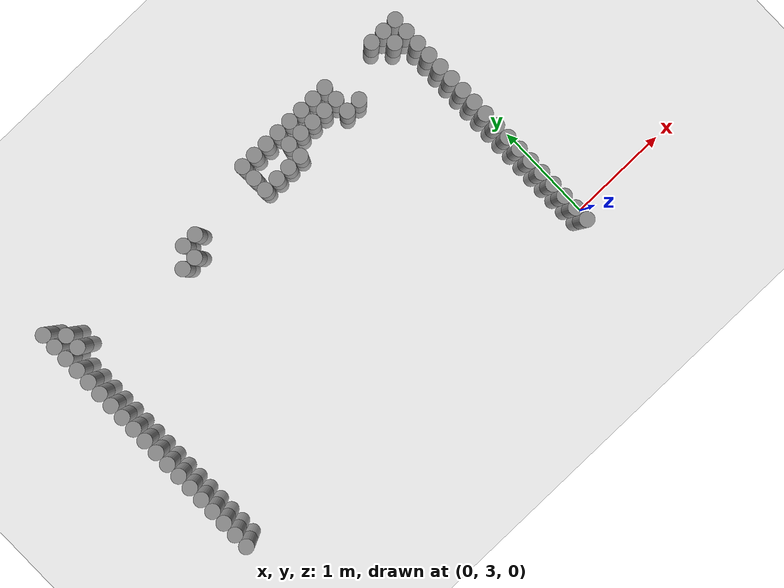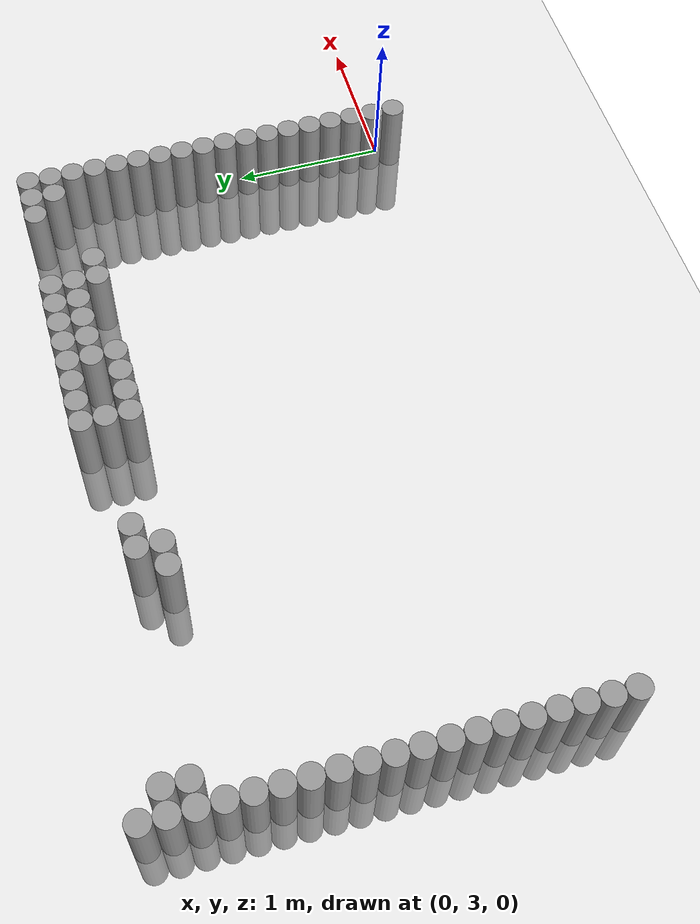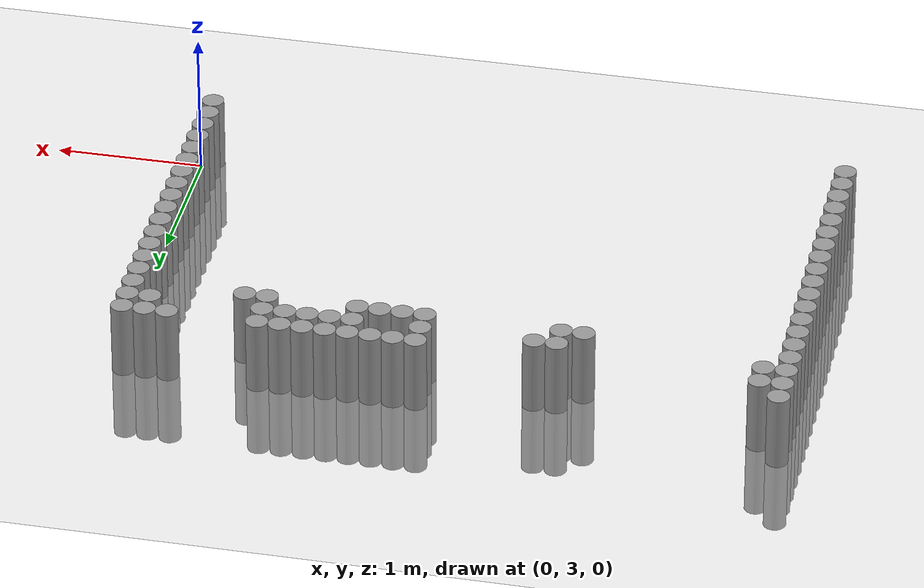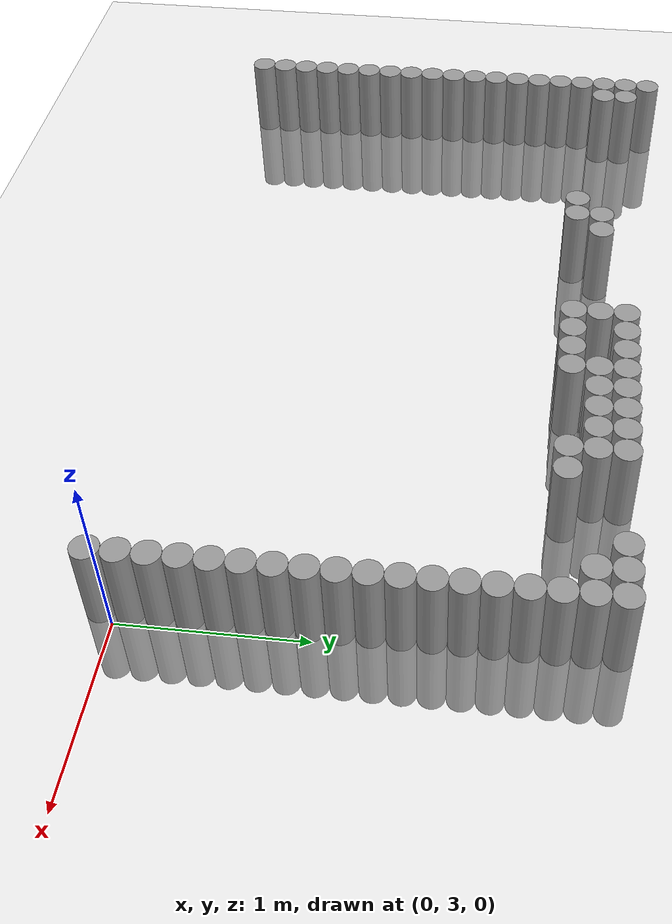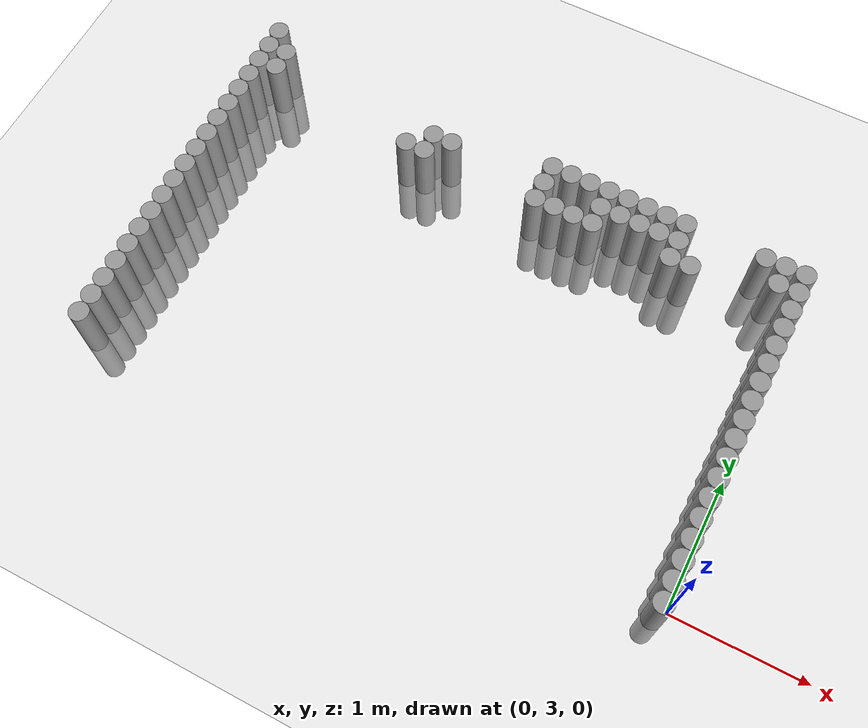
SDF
<sdf version="1.6">
 <world name="default">
  <model name="ground_plane">
   <static>1</static>
   <link name="link">
    <collision name="collision">
     <geometry><plane><normal>0 0 1</normal><size>100 100</size></plane></geometry>
     <surface><friction><ode><mu>100</mu><mu2>50</mu2></ode></friction></surface>
    </collision>
    <visual name="visual">
     <cast_shadows>0</cast_shadows>
     <geometry><plane><normal>0 0 1</normal><size>100 100</size></plane></geometry>
     <material>
      <script><uri>file://media/materials/scripts/gazebo.material</uri><name>Gazebo/Grey</name></script>
     </material>
    </visual>
   </link>
  </model>
  <model name="unit_cylinder_66">
   <pose>-0.075000 2.925000 0.000000 0.000000 0.000000 0.000000</pose>
   <link name="link">
    <inertial>
     <mass>1</mass>
     <inertia><ixx>0.145833</ixx><ixy>0</ixy><ixz>0</ixz><iyy>0.145833</iyy><iyz>0</iyz><izz>0.125</izz></inertia>
    </inertial>
    <collision name="collision">
     <geometry><cylinder><radius>0.075000</radius><length>1</length></cylinder></geometry>
    </collision>
    <visual name="visual">
     <geometry><cylinder><radius>0.075000</radius><length>1</length></cylinder></geometry>
     <material>
      <script><name>Gazebo/Grey</name><uri>file://media/materials/scripts/gazebo.material</uri></script>
     </material>
    </visual>
   </link>
  </model>
  <model name="unit_cylinder_67">
   <pose>-4.425000 2.925000 0.000000 0.000000 0.000000 0.000000</pose>
   <link name="link">
    <inertial>
     <mass>1</mass>
     <inertia><ixx>0.145833</ixx><ixy>0</ixy><ixz>0</ixz><iyy>0.145833</iyy><iyz>0</iyz><izz>0.125</izz></inertia>
    </inertial>
    <collision name="collision">
     <geometry><cylinder><radius>0.075000</radius><length>1</length></cylinder></geometry>
    </collision>
    <visual name="visual">
     <geometry><cylinder><radius>0.075000</radius><length>1</length></cylinder></geometry>
     <material>
      <script><name>Gazebo/Grey</name><uri>file://media/materials/scripts/gazebo.material</uri></script>
     </material>
    </visual>
   </link>
  </model>
  <model name="unit_cylinder_68">
   <pose>-0.075000 3.075000 0.000000 0.000000 0.000000 0.000000</pose>
   <link name="link">
    <inertial>
     <mass>1</mass>
     <inertia><ixx>0.145833</ixx><ixy>0</ixy><ixz>0</ixz><iyy>0.145833</iyy><iyz>0</iyz><izz>0.125</izz></inertia>
    </inertial>
    <collision name="collision">
     <geometry><cylinder><radius>0.075000</radius><length>1</length></cylinder></geometry>
    </collision>
    <visual name="visual">
     <geometry><cylinder><radius>0.075000</radius><length>1</length></cylinder></geometry>
     <material>
      <script><name>Gazebo/Grey</name><uri>file://media/materials/scripts/gazebo.material</uri></script>
     </material>
    </visual>
   </link>
  </model>
  <model name="unit_cylinder_69">
   <pose>-4.425000 3.075000 0.000000 0.000000 0.000000 0.000000</pose>
   <link name="link">
    <inertial>
     <mass>1</mass>
     <inertia><ixx>0.145833</ixx><ixy>0</ixy><ixz>0</ixz><iyy>0.145833</iyy><iyz>0</iyz><izz>0.125</izz></inertia>
    </inertial>
    <collision name="collision">
     <geometry><cylinder><radius>0.075000</radius><length>1</length></cylinder></geometry>
    </collision>
    <visual name="visual">
     <geometry><cylinder><radius>0.075000</radius><length>1</length></cylinder></geometry>
     <material>
      <script><name>Gazebo/Grey</name><uri>file://media/materials/scripts/gazebo.material</uri></script>
     </material>
    </visual>
   </link>
  </model>
  <model name="unit_cylinder_70">
   <pose>-0.075000 3.225000 0.000000 0.000000 0.000000 0.000000</pose>
   <link name="link">
    <inertial>
     <mass>1</mass>
     <inertia><ixx>0.145833</ixx><ixy>0</ixy><ixz>0</ixz><iyy>0.145833</iyy><iyz>0</iyz><izz>0.125</izz></inertia>
    </inertial>
    <collision name="collision">
     <geometry><cylinder><radius>0.075000</radius><length>1</length></cylinder></geometry>
    </collision>
    <visual name="visual">
     <geometry><cylinder><radius>0.075000</radius><length>1</length></cylinder></geometry>
     <material>
      <script><name>Gazebo/Grey</name><uri>file://media/materials/scripts/gazebo.material</uri></script>
     </material>
    </visual>
   </link>
  </model>
  <model name="unit_cylinder_71">
   <pose>-4.425000 3.225000 0.000000 0.000000 0.000000 0.000000</pose>
   <link name="link">
    <inertial>
     <mass>1</mass>
     <inertia><ixx>0.145833</ixx><ixy>0</ixy><ixz>0</ixz><iyy>0.145833</iyy><iyz>0</iyz><izz>0.125</izz></inertia>
    </inertial>
    <collision name="collision">
     <geometry><cylinder><radius>0.075000</radius><length>1</length></cylinder></geometry>
    </collision>
    <visual name="visual">
     <geometry><cylinder><radius>0.075000</radius><length>1</length></cylinder></geometry>
     <material>
      <script><name>Gazebo/Grey</name><uri>file://media/materials/scripts/gazebo.material</uri></script>
     </material>
    </visual>
   </link>
  </model>
  <model name="unit_cylinder_72">
   <pose>-0.075000 3.375000 0.000000 0.000000 0.000000 0.000000</pose>
   <link name="link">
    <inertial>
     <mass>1</mass>
     <inertia><ixx>0.145833</ixx><ixy>0</ixy><ixz>0</ixz><iyy>0.145833</iyy><iyz>0</iyz><izz>0.125</izz></inertia>
    </inertial>
    <collision name="collision">
     <geometry><cylinder><radius>0.075000</radius><length>1</length></cylinder></geometry>
    </collision>
    <visual name="visual">
     <geometry><cylinder><radius>0.075000</radius><length>1</length></cylinder></geometry>
     <material>
      <script><name>Gazebo/Grey</name><uri>file://media/materials/scripts/gazebo.material</uri></script>
     </material>
    </visual>
   </link>
  </model>
  <model name="unit_cylinder_73">
   <pose>-4.425000 3.375000 0.000000 0.000000 0.000000 0.000000</pose>
   <link name="link">
    <inertial>
     <mass>1</mass>
     <inertia><ixx>0.145833</ixx><ixy>0</ixy><ixz>0</ixz><iyy>0.145833</iyy><iyz>0</iyz><izz>0.125</izz></inertia>
    </inertial>
    <collision name="collision">
     <geometry><cylinder><radius>0.075000</radius><length>1</length></cylinder></geometry>
    </collision>
    <visual name="visual">
     <geometry><cylinder><radius>0.075000</radius><length>1</length></cylinder></geometry>
     <material>
      <script><name>Gazebo/Grey</name><uri>file://media/materials/scripts/gazebo.material</uri></script>
     </material>
    </visual>
   </link>
  </model>
  <model name="unit_cylinder_74">
   <pose>-0.075000 3.525000 0.000000 0.000000 0.000000 0.000000</pose>
   <link name="link">
    <inertial>
     <mass>1</mass>
     <inertia><ixx>0.145833</ixx><ixy>0</ixy><ixz>0</ixz><iyy>0.145833</iyy><iyz>0</iyz><izz>0.125</izz></inertia>
    </inertial>
    <collision name="collision">
     <geometry><cylinder><radius>0.075000</radius><length>1</length></cylinder></geometry>
    </collision>
    <visual name="visual">
     <geometry><cylinder><radius>0.075000</radius><length>1</length></cylinder></geometry>
     <material>
      <script><name>Gazebo/Grey</name><uri>file://media/materials/scripts/gazebo.material</uri></script>
     </material>
    </visual>
   </link>
  </model>
  <model name="unit_cylinder_75">
   <pose>-4.425000 3.525000 0.000000 0.000000 0.000000 0.000000</pose>
   <link name="link">
    <inertial>
     <mass>1</mass>
     <inertia><ixx>0.145833</ixx><ixy>0</ixy><ixz>0</ixz><iyy>0.145833</iyy><iyz>0</iyz><izz>0.125</izz></inertia>
    </inertial>
    <collision name="collision">
     <geometry><cylinder><radius>0.075000</radius><length>1</length></cylinder></geometry>
    </collision>
    <visual name="visual">
     <geometry><cylinder><radius>0.075000</radius><length>1</length></cylinder></geometry>
     <material>
      <script><name>Gazebo/Grey</name><uri>file://media/materials/scripts/gazebo.material</uri></script>
     </material>
    </visual>
   </link>
  </model>
  <model name="unit_cylinder_76">
   <pose>-0.075000 3.675000 0.000000 0.000000 0.000000 0.000000</pose>
   <link name="link">
    <inertial>
     <mass>1</mass>
     <inertia><ixx>0.145833</ixx><ixy>0</ixy><ixz>0</ixz><iyy>0.145833</iyy><iyz>0</iyz><izz>0.125</izz></inertia>
    </inertial>
    <collision name="collision">
     <geometry><cylinder><radius>0.075000</radius><length>1</length></cylinder></geometry>
    </collision>
    <visual name="visual">
     <geometry><cylinder><radius>0.075000</radius><length>1</length></cylinder></geometry>
     <material>
      <script><name>Gazebo/Grey</name><uri>file://media/materials/scripts/gazebo.material</uri></script>
     </material>
    </visual>
   </link>
  </model>
  <model name="unit_cylinder_77">
   <pose>-4.425000 3.675000 0.000000 0.000000 0.000000 0.000000</pose>
   <link name="link">
    <inertial>
     <mass>1</mass>
     <inertia><ixx>0.145833</ixx><ixy>0</ixy><ixz>0</ixz><iyy>0.145833</iyy><iyz>0</iyz><izz>0.125</izz></inertia>
    </inertial>
    <collision name="collision">
     <geometry><cylinder><radius>0.075000</radius><length>1</length></cylinder></geometry>
    </collision>
    <visual name="visual">
     <geometry><cylinder><radius>0.075000</radius><length>1</length></cylinder></geometry>
     <material>
      <script><name>Gazebo/Grey</name><uri>file://media/materials/scripts/gazebo.material</uri></script>
     </material>
    </visual>
   </link>
  </model>
  <model name="unit_cylinder_78">
   <pose>-0.075000 3.825000 0.000000 0.000000 0.000000 0.000000</pose>
   <link name="link">
    <inertial>
     <mass>1</mass>
     <inertia><ixx>0.145833</ixx><ixy>0</ixy><ixz>0</ixz><iyy>0.145833</iyy><iyz>0</iyz><izz>0.125</izz></inertia>
    </inertial>
    <collision name="collision">
     <geometry><cylinder><radius>0.075000</radius><length>1</length></cylinder></geometry>
    </collision>
    <visual name="visual">
     <geometry><cylinder><radius>0.075000</radius><length>1</length></cylinder></geometry>
     <material>
      <script><name>Gazebo/Grey</name><uri>file://media/materials/scripts/gazebo.material</uri></script>
     </material>
    </visual>
   </link>
  </model>
  <model name="unit_cylinder_79">
   <pose>-4.425000 3.825000 0.000000 0.000000 0.000000 0.000000</pose>
   <link name="link">
    <inertial>
     <mass>1</mass>
     <inertia><ixx>0.145833</ixx><ixy>0</ixy><ixz>0</ixz><iyy>0.145833</iyy><iyz>0</iyz><izz>0.125</izz></inertia>
    </inertial>
    <collision name="collision">
     <geometry><cylinder><radius>0.075000</radius><length>1</length></cylinder></geometry>
    </collision>
    <visual name="visual">
     <geometry><cylinder><radius>0.075000</radius><length>1</length></cylinder></geometry>
     <material>
      <script><name>Gazebo/Grey</name><uri>file://media/materials/scripts/gazebo.material</uri></script>
     </material>
    </visual>
   </link>
  </model>
  <model name="unit_cylinder_80">
   <pose>-0.075000 3.975000 0.000000 0.000000 0.000000 0.000000</pose>
   <link name="link">
    <inertial>
     <mass>1</mass>
     <inertia><ixx>0.145833</ixx><ixy>0</ixy><ixz>0</ixz><iyy>0.145833</iyy><iyz>0</iyz><izz>0.125</izz></inertia>
    </inertial>
    <collision name="collision">
     <geometry><cylinder><radius>0.075000</radius><length>1</length></cylinder></geometry>
    </collision>
    <visual name="visual">
     <geometry><cylinder><radius>0.075000</radius><length>1</length></cylinder></geometry>
     <material>
      <script><name>Gazebo/Grey</name><uri>file://media/materials/scripts/gazebo.material</uri></script>
     </material>
    </visual>
   </link>
  </model>
  <model name="unit_cylinder_81">
   <pose>-4.425000 3.975000 0.000000 0.000000 0.000000 0.000000</pose>
   <link name="link">
    <inertial>
     <mass>1</mass>
     <inertia><ixx>0.145833</ixx><ixy>0</ixy><ixz>0</ixz><iyy>0.145833</iyy><iyz>0</iyz><izz>0.125</izz></inertia>
    </inertial>
    <collision name="collision">
     <geometry><cylinder><radius>0.075000</radius><length>1</length></cylinder></geometry>
    </collision>
    <visual name="visual">
     <geometry><cylinder><radius>0.075000</radius><length>1</length></cylinder></geometry>
     <material>
      <script><name>Gazebo/Grey</name><uri>file://media/materials/scripts/gazebo.material</uri></script>
     </material>
    </visual>
   </link>
  </model>
  <model name="unit_cylinder_82">
   <pose>-0.075000 4.125000 0.000000 0.000000 0.000000 0.000000</pose>
   <link name="link">
    <inertial>
     <mass>1</mass>
     <inertia><ixx>0.145833</ixx><ixy>0</ixy><ixz>0</ixz><iyy>0.145833</iyy><iyz>0</iyz><izz>0.125</izz></inertia>
    </inertial>
    <collision name="collision">
     <geometry><cylinder><radius>0.075000</radius><length>1</length></cylinder></geometry>
    </collision>
    <visual name="visual">
     <geometry><cylinder><radius>0.075000</radius><length>1</length></cylinder></geometry>
     <material>
      <script><name>Gazebo/Grey</name><uri>file://media/materials/scripts/gazebo.material</uri></script>
     </material>
    </visual>
   </link>
  </model>
  <model name="unit_cylinder_83">
   <pose>-4.425000 4.125000 0.000000 0.000000 0.000000 0.000000</pose>
   <link name="link">
    <inertial>
     <mass>1</mass>
     <inertia><ixx>0.145833</ixx><ixy>0</ixy><ixz>0</ixz><iyy>0.145833</iyy><iyz>0</iyz><izz>0.125</izz></inertia>
    </inertial>
    <collision name="collision">
     <geometry><cylinder><radius>0.075000</radius><length>1</length></cylinder></geometry>
    </collision>
    <visual name="visual">
     <geometry><cylinder><radius>0.075000</radius><length>1</length></cylinder></geometry>
     <material>
      <script><name>Gazebo/Grey</name><uri>file://media/materials/scripts/gazebo.material</uri></script>
     </material>
    </visual>
   </link>
  </model>
  <model name="unit_cylinder_84">
   <pose>-0.075000 4.275000 0.000000 0.000000 0.000000 0.000000</pose>
   <link name="link">
    <inertial>
     <mass>1</mass>
     <inertia><ixx>0.145833</ixx><ixy>0</ixy><ixz>0</ixz><iyy>0.145833</iyy><iyz>0</iyz><izz>0.125</izz></inertia>
    </inertial>
    <collision name="collision">
     <geometry><cylinder><radius>0.075000</radius><length>1</length></cylinder></geometry>
    </collision>
    <visual name="visual">
     <geometry><cylinder><radius>0.075000</radius><length>1</length></cylinder></geometry>
     <material>
      <script><name>Gazebo/Grey</name><uri>file://media/materials/scripts/gazebo.material</uri></script>
     </material>
    </visual>
   </link>
  </model>
  <model name="unit_cylinder_85">
   <pose>-4.425000 4.275000 0.000000 0.000000 0.000000 0.000000</pose>
   <link name="link">
    <inertial>
     <mass>1</mass>
     <inertia><ixx>0.145833</ixx><ixy>0</ixy><ixz>0</ixz><iyy>0.145833</iyy><iyz>0</iyz><izz>0.125</izz></inertia>
    </inertial>
    <collision name="collision">
     <geometry><cylinder><radius>0.075000</radius><length>1</length></cylinder></geometry>
    </collision>
    <visual name="visual">
     <geometry><cylinder><radius>0.075000</radius><length>1</length></cylinder></geometry>
     <material>
      <script><name>Gazebo/Grey</name><uri>file://media/materials/scripts/gazebo.material</uri></script>
     </material>
    </visual>
   </link>
  </model>
  <model name="unit_cylinder_86">
   <pose>-0.075000 4.425000 0.000000 0.000000 0.000000 0.000000</pose>
   <link name="link">
    <inertial>
     <mass>1</mass>
     <inertia><ixx>0.145833</ixx><ixy>0</ixy><ixz>0</ixz><iyy>0.145833</iyy><iyz>0</iyz><izz>0.125</izz></inertia>
    </inertial>
    <collision name="collision">
     <geometry><cylinder><radius>0.075000</radius><length>1</length></cylinder></geometry>
    </collision>
    <visual name="visual">
     <geometry><cylinder><radius>0.075000</radius><length>1</length></cylinder></geometry>
     <material>
      <script><name>Gazebo/Grey</name><uri>file://media/materials/scripts/gazebo.material</uri></script>
     </material>
    </visual>
   </link>
  </model>
  <model name="unit_cylinder_87">
   <pose>-4.425000 4.425000 0.000000 0.000000 0.000000 0.000000</pose>
   <link name="link">
    <inertial>
     <mass>1</mass>
     <inertia><ixx>0.145833</ixx><ixy>0</ixy><ixz>0</ixz><iyy>0.145833</iyy><iyz>0</iyz><izz>0.125</izz></inertia>
    </inertial>
    <collision name="collision">
     <geometry><cylinder><radius>0.075000</radius><length>1</length></cylinder></geometry>
    </collision>
    <visual name="visual">
     <geometry><cylinder><radius>0.075000</radius><length>1</length></cylinder></geometry>
     <material>
      <script><name>Gazebo/Grey</name><uri>file://media/materials/scripts/gazebo.material</uri></script>
     </material>
    </visual>
   </link>
  </model>
  <model name="unit_cylinder_88">
   <pose>-0.075000 4.575000 0.000000 0.000000 0.000000 0.000000</pose>
   <link name="link">
    <inertial>
     <mass>1</mass>
     <inertia><ixx>0.145833</ixx><ixy>0</ixy><ixz>0</ixz><iyy>0.145833</iyy><iyz>0</iyz><izz>0.125</izz></inertia>
    </inertial>
    <collision name="collision">
     <geometry><cylinder><radius>0.075000</radius><length>1</length></cylinder></geometry>
    </collision>
    <visual name="visual">
     <geometry><cylinder><radius>0.075000</radius><length>1</length></cylinder></geometry>
     <material>
      <script><name>Gazebo/Grey</name><uri>file://media/materials/scripts/gazebo.material</uri></script>
     </material>
    </visual>
   </link>
  </model>
  <model name="unit_cylinder_89">
   <pose>-4.425000 4.575000 0.000000 0.000000 0.000000 0.000000</pose>
   <link name="link">
    <inertial>
     <mass>1</mass>
     <inertia><ixx>0.145833</ixx><ixy>0</ixy><ixz>0</ixz><iyy>0.145833</iyy><iyz>0</iyz><izz>0.125</izz></inertia>
    </inertial>
    <collision name="collision">
     <geometry><cylinder><radius>0.075000</radius><length>1</length></cylinder></geometry>
    </collision>
    <visual name="visual">
     <geometry><cylinder><radius>0.075000</radius><length>1</length></cylinder></geometry>
     <material>
      <script><name>Gazebo/Grey</name><uri>file://media/materials/scripts/gazebo.material</uri></script>
     </material>
    </visual>
   </link>
  </model>
  <model name="unit_cylinder_90">
   <pose>-0.075000 4.725000 0.000000 0.000000 0.000000 0.000000</pose>
   <link name="link">
    <inertial>
     <mass>1</mass>
     <inertia><ixx>0.145833</ixx><ixy>0</ixy><ixz>0</ixz><iyy>0.145833</iyy><iyz>0</iyz><izz>0.125</izz></inertia>
    </inertial>
    <collision name="collision">
     <geometry><cylinder><radius>0.075000</radius><length>1</length></cylinder></geometry>
    </collision>
    <visual name="visual">
     <geometry><cylinder><radius>0.075000</radius><length>1</length></cylinder></geometry>
     <material>
      <script><name>Gazebo/Grey</name><uri>file://media/materials/scripts/gazebo.material</uri></script>
     </material>
    </visual>
   </link>
  </model>
  <model name="unit_cylinder_91">
   <pose>-4.425000 4.725000 0.000000 0.000000 0.000000 0.000000</pose>
   <link name="link">
    <inertial>
     <mass>1</mass>
     <inertia><ixx>0.145833</ixx><ixy>0</ixy><ixz>0</ixz><iyy>0.145833</iyy><iyz>0</iyz><izz>0.125</izz></inertia>
    </inertial>
    <collision name="collision">
     <geometry><cylinder><radius>0.075000</radius><length>1</length></cylinder></geometry>
    </collision>
    <visual name="visual">
     <geometry><cylinder><radius>0.075000</radius><length>1</length></cylinder></geometry>
     <material>
      <script><name>Gazebo/Grey</name><uri>file://media/materials/scripts/gazebo.material</uri></script>
     </material>
    </visual>
   </link>
  </model>
  <model name="unit_cylinder_92">
   <pose>-0.075000 4.875000 0.000000 0.000000 0.000000 0.000000</pose>
   <link name="link">
    <inertial>
     <mass>1</mass>
     <inertia><ixx>0.145833</ixx><ixy>0</ixy><ixz>0</ixz><iyy>0.145833</iyy><iyz>0</iyz><izz>0.125</izz></inertia>
    </inertial>
    <collision name="collision">
     <geometry><cylinder><radius>0.075000</radius><length>1</length></cylinder></geometry>
    </collision>
    <visual name="visual">
     <geometry><cylinder><radius>0.075000</radius><length>1</length></cylinder></geometry>
     <material>
      <script><name>Gazebo/Grey</name><uri>file://media/materials/scripts/gazebo.material</uri></script>
     </material>
    </visual>
   </link>
  </model>
  <model name="unit_cylinder_93">
   <pose>-4.425000 4.875000 0.000000 0.000000 0.000000 0.000000</pose>
   <link name="link">
    <inertial>
     <mass>1</mass>
     <inertia><ixx>0.145833</ixx><ixy>0</ixy><ixz>0</ixz><iyy>0.145833</iyy><iyz>0</iyz><izz>0.125</izz></inertia>
    </inertial>
    <collision name="collision">
     <geometry><cylinder><radius>0.075000</radius><length>1</length></cylinder></geometry>
    </collision>
    <visual name="visual">
     <geometry><cylinder><radius>0.075000</radius><length>1</length></cylinder></geometry>
     <material>
      <script><name>Gazebo/Grey</name><uri>file://media/materials/scripts/gazebo.material</uri></script>
     </material>
    </visual>
   </link>
  </model>
  <model name="unit_cylinder_94">
   <pose>-0.075000 5.025000 0.000000 0.000000 0.000000 0.000000</pose>
   <link name="link">
    <inertial>
     <mass>1</mass>
     <inertia><ixx>0.145833</ixx><ixy>0</ixy><ixz>0</ixz><iyy>0.145833</iyy><iyz>0</iyz><izz>0.125</izz></inertia>
    </inertial>
    <collision name="collision">
     <geometry><cylinder><radius>0.075000</radius><length>1</length></cylinder></geometry>
    </collision>
    <visual name="visual">
     <geometry><cylinder><radius>0.075000</radius><length>1</length></cylinder></geometry>
     <material>
      <script><name>Gazebo/Grey</name><uri>file://media/materials/scripts/gazebo.material</uri></script>
     </material>
    </visual>
   </link>
  </model>
  <model name="unit_cylinder_95">
   <pose>-4.425000 5.025000 0.000000 0.000000 0.000000 0.000000</pose>
   <link name="link">
    <inertial>
     <mass>1</mass>
     <inertia><ixx>0.145833</ixx><ixy>0</ixy><ixz>0</ixz><iyy>0.145833</iyy><iyz>0</iyz><izz>0.125</izz></inertia>
    </inertial>
    <collision name="collision">
     <geometry><cylinder><radius>0.075000</radius><length>1</length></cylinder></geometry>
    </collision>
    <visual name="visual">
     <geometry><cylinder><radius>0.075000</radius><length>1</length></cylinder></geometry>
     <material>
      <script><name>Gazebo/Grey</name><uri>file://media/materials/scripts/gazebo.material</uri></script>
     </material>
    </visual>
   </link>
  </model>
  <model name="unit_cylinder_96">
   <pose>-4.425000 5.175000 0.000000 0.000000 0.000000 0.000000</pose>
   <link name="link">
    <inertial>
     <mass>1</mass>
     <inertia><ixx>0.145833</ixx><ixy>0</ixy><ixz>0</ixz><iyy>0.145833</iyy><iyz>0</iyz><izz>0.125</izz></inertia>
    </inertial>
    <collision name="collision">
     <geometry><cylinder><radius>0.075000</radius><length>1</length></cylinder></geometry>
    </collision>
    <visual name="visual">
     <geometry><cylinder><radius>0.075000</radius><length>1</length></cylinder></geometry>
     <material>
      <script><name>Gazebo/Grey</name><uri>file://media/materials/scripts/gazebo.material</uri></script>
     </material>
    </visual>
   </link>
  </model>
  <model name="unit_cylinder_97">
   <pose>-4.425000 5.325000 0.000000 0.000000 0.000000 0.000000</pose>
   <link name="link">
    <inertial>
     <mass>1</mass>
     <inertia><ixx>0.145833</ixx><ixy>0</ixy><ixz>0</ixz><iyy>0.145833</iyy><iyz>0</iyz><izz>0.125</izz></inertia>
    </inertial>
    <collision name="collision">
     <geometry><cylinder><radius>0.075000</radius><length>1</length></cylinder></geometry>
    </collision>
    <visual name="visual">
     <geometry><cylinder><radius>0.075000</radius><length>1</length></cylinder></geometry>
     <material>
      <script><name>Gazebo/Grey</name><uri>file://media/materials/scripts/gazebo.material</uri></script>
     </material>
    </visual>
   </link>
  </model>
  <model name="unit_cylinder_98">
   <pose>-4.425000 5.475000 0.000000 0.000000 0.000000 0.000000</pose>
   <link name="link">
    <inertial>
     <mass>1</mass>
     <inertia><ixx>0.145833</ixx><ixy>0</ixy><ixz>0</ixz><iyy>0.145833</iyy><iyz>0</iyz><izz>0.125</izz></inertia>
    </inertial>
    <collision name="collision">
     <geometry><cylinder><radius>0.075000</radius><length>1</length></cylinder></geometry>
    </collision>
    <visual name="visual">
     <geometry><cylinder><radius>0.075000</radius><length>1</length></cylinder></geometry>
     <material>
      <script><name>Gazebo/Grey</name><uri>file://media/materials/scripts/gazebo.material</uri></script>
     </material>
    </visual>
   </link>
  </model>
  <model name="unit_cylinder_99">
   <pose>-4.425000 5.625000 0.000000 0.000000 0.000000 0.000000</pose>
   <link name="link">
    <inertial>
     <mass>1</mass>
     <inertia><ixx>0.145833</ixx><ixy>0</ixy><ixz>0</ixz><iyy>0.145833</iyy><iyz>0</iyz><izz>0.125</izz></inertia>
    </inertial>
    <collision name="collision">
     <geometry><cylinder><radius>0.075000</radius><length>1</length></cylinder></geometry>
    </collision>
    <visual name="visual">
     <geometry><cylinder><radius>0.075000</radius><length>1</length></cylinder></geometry>
     <material>
      <script><name>Gazebo/Grey</name><uri>file://media/materials/scripts/gazebo.material</uri></script>
     </material>
    </visual>
   </link>
  </model>
  <model name="unit_cylinder_126">
   <pose>-4.275000 5.325000 0.000000 0.000000 0.000000 0.000000</pose>
   <link name="link">
    <inertial>
     <mass>1</mass>
     <inertia><ixx>0.145833</ixx><ixy>0</ixy><ixz>0</ixz><iyy>0.145833</iyy><iyz>0</iyz><izz>0.125</izz></inertia>
    </inertial>
    <collision name="collision">
     <geometry><cylinder><radius>0.075000</radius><length>1</length></cylinder></geometry>
    </collision>
    <visual name="visual">
     <geometry><cylinder><radius>0.075000</radius><length>1</length></cylinder></geometry>
     <material>
      <script><name>Gazebo/Grey</name><uri>file://media/materials/scripts/gazebo.material</uri></script>
     </material>
    </visual>
   </link>
  </model>
  <model name="unit_cylinder_127">
   <pose>-4.275000 5.475000 0.000000 0.000000 0.000000 0.000000</pose>
   <link name="link">
    <inertial>
     <mass>1</mass>
     <inertia><ixx>0.145833</ixx><ixy>0</ixy><ixz>0</ixz><iyy>0.145833</iyy><iyz>0</iyz><izz>0.125</izz></inertia>
    </inertial>
    <collision name="collision">
     <geometry><cylinder><radius>0.075000</radius><length>1</length></cylinder></geometry>
    </collision>
    <visual name="visual">
     <geometry><cylinder><radius>0.075000</radius><length>1</length></cylinder></geometry>
     <material>
      <script><name>Gazebo/Grey</name><uri>file://media/materials/scripts/gazebo.material</uri></script>
     </material>
    </visual>
   </link>
  </model>
  <model name="unit_cylinder_166">
   <pose>-3.075000 5.175000 0.000000 0.000000 0.000000 0.000000</pose>
   <link name="link">
    <inertial>
     <mass>1</mass>
     <inertia><ixx>0.145833</ixx><ixy>0</ixy><ixz>0</ixz><iyy>0.145833</iyy><iyz>0</iyz><izz>0.125</izz></inertia>
    </inertial>
    <collision name="collision">
     <geometry><cylinder><radius>0.075000</radius><length>1</length></cylinder></geometry>
    </collision>
    <visual name="visual">
     <geometry><cylinder><radius>0.075000</radius><length>1</length></cylinder></geometry>
     <material>
      <script><name>Gazebo/Grey</name><uri>file://media/materials/scripts/gazebo.material</uri></script>
     </material>
    </visual>
   </link>
  </model>
  <model name="unit_cylinder_167">
   <pose>-2.925000 5.175000 0.000000 0.000000 0.000000 0.000000</pose>
   <link name="link">
    <inertial>
     <mass>1</mass>
     <inertia><ixx>0.145833</ixx><ixy>0</ixy><ixz>0</ixz><iyy>0.145833</iyy><iyz>0</iyz><izz>0.125</izz></inertia>
    </inertial>
    <collision name="collision">
     <geometry><cylinder><radius>0.075000</radius><length>1</length></cylinder></geometry>
    </collision>
    <visual name="visual">
     <geometry><cylinder><radius>0.075000</radius><length>1</length></cylinder></geometry>
     <material>
      <script><name>Gazebo/Grey</name><uri>file://media/materials/scripts/gazebo.material</uri></script>
     </material>
    </visual>
   </link>
  </model>
  <model name="unit_cylinder_168">
   <pose>-2.925000 5.325000 0.000000 0.000000 0.000000 0.000000</pose>
   <link name="link">
    <inertial>
     <mass>1</mass>
     <inertia><ixx>0.145833</ixx><ixy>0</ixy><ixz>0</ixz><iyy>0.145833</iyy><iyz>0</iyz><izz>0.125</izz></inertia>
    </inertial>
    <collision name="collision">
     <geometry><cylinder><radius>0.075000</radius><length>1</length></cylinder></geometry>
    </collision>
    <visual name="visual">
     <geometry><cylinder><radius>0.075000</radius><length>1</length></cylinder></geometry>
     <material>
      <script><name>Gazebo/Grey</name><uri>file://media/materials/scripts/gazebo.material</uri></script>
     </material>
    </visual>
   </link>
  </model>
  <model name="unit_cylinder_170">
   <pose>-2.775000 5.325000 0.000000 0.000000 0.000000 0.000000</pose>
   <link name="link">
    <inertial>
     <mass>1</mass>
     <inertia><ixx>0.145833</ixx><ixy>0</ixy><ixz>0</ixz><iyy>0.145833</iyy><iyz>0</iyz><izz>0.125</izz></inertia>
    </inertial>
    <collision name="collision">
     <geometry><cylinder><radius>0.075000</radius><length>1</length></cylinder></geometry>
    </collision>
    <visual name="visual">
     <geometry><cylinder><radius>0.075000</radius><length>1</length></cylinder></geometry>
     <material>
      <script><name>Gazebo/Grey</name><uri>file://media/materials/scripts/gazebo.material</uri></script>
     </material>
    </visual>
   </link>
  </model>
  <model name="unit_cylinder_183">
   <pose>-2.025000 5.175000 0.000000 0.000000 0.000000 0.000000</pose>
   <link name="link">
    <inertial>
     <mass>1</mass>
     <inertia><ixx>0.145833</ixx><ixy>0</ixy><ixz>0</ixz><iyy>0.145833</iyy><iyz>0</iyz><izz>0.125</izz></inertia>
    </inertial>
    <collision name="collision">
     <geometry><cylinder><radius>0.075000</radius><length>1</length></cylinder></geometry>
    </collision>
    <visual name="visual">
     <geometry><cylinder><radius>0.075000</radius><length>1</length></cylinder></geometry>
     <material>
      <script><name>Gazebo/Grey</name><uri>file://media/materials/scripts/gazebo.material</uri></script>
     </material>
    </visual>
   </link>
  </model>
  <model name="unit_cylinder_184">
   <pose>-2.025000 5.325000 0.000000 0.000000 0.000000 0.000000</pose>
   <link name="link">
    <inertial>
     <mass>1</mass>
     <inertia><ixx>0.145833</ixx><ixy>0</ixy><ixz>0</ixz><iyy>0.145833</iyy><iyz>0</iyz><izz>0.125</izz></inertia>
    </inertial>
    <collision name="collision">
     <geometry><cylinder><radius>0.075000</radius><length>1</length></cylinder></geometry>
    </collision>
    <visual name="visual">
     <geometry><cylinder><radius>0.075000</radius><length>1</length></cylinder></geometry>
     <material>
      <script><name>Gazebo/Grey</name><uri>file://media/materials/scripts/gazebo.material</uri></script>
     </material>
    </visual>
   </link>
  </model>
  <model name="unit_cylinder_185">
   <pose>-2.025000 5.475000 0.000000 0.000000 0.000000 0.000000</pose>
   <link name="link">
    <inertial>
     <mass>1</mass>
     <inertia><ixx>0.145833</ixx><ixy>0</ixy><ixz>0</ixz><iyy>0.145833</iyy><iyz>0</iyz><izz>0.125</izz></inertia>
    </inertial>
    <collision name="collision">
     <geometry><cylinder><radius>0.075000</radius><length>1</length></cylinder></geometry>
    </collision>
    <visual name="visual">
     <geometry><cylinder><radius>0.075000</radius><length>1</length></cylinder></geometry>
     <material>
      <script><name>Gazebo/Grey</name><uri>file://media/materials/scripts/gazebo.material</uri></script>
     </material>
    </visual>
   </link>
  </model>
  <model name="unit_cylinder_186">
   <pose>-1.875000 5.175000 0.000000 0.000000 0.000000 0.000000</pose>
   <link name="link">
    <inertial>
     <mass>1</mass>
     <inertia><ixx>0.145833</ixx><ixy>0</ixy><ixz>0</ixz><iyy>0.145833</iyy><iyz>0</iyz><izz>0.125</izz></inertia>
    </inertial>
    <collision name="collision">
     <geometry><cylinder><radius>0.075000</radius><length>1</length></cylinder></geometry>
    </collision>
    <visual name="visual">
     <geometry><cylinder><radius>0.075000</radius><length>1</length></cylinder></geometry>
     <material>
      <script><name>Gazebo/Grey</name><uri>file://media/materials/scripts/gazebo.material</uri></script>
     </material>
    </visual>
   </link>
  </model>
  <model name="unit_cylinder_187">
   <pose>-1.875000 5.475000 0.000000 0.000000 0.000000 0.000000</pose>
   <link name="link">
    <inertial>
     <mass>1</mass>
     <inertia><ixx>0.145833</ixx><ixy>0</ixy><ixz>0</ixz><iyy>0.145833</iyy><iyz>0</iyz><izz>0.125</izz></inertia>
    </inertial>
    <collision name="collision">
     <geometry><cylinder><radius>0.075000</radius><length>1</length></cylinder></geometry>
    </collision>
    <visual name="visual">
     <geometry><cylinder><radius>0.075000</radius><length>1</length></cylinder></geometry>
     <material>
      <script><name>Gazebo/Grey</name><uri>file://media/materials/scripts/gazebo.material</uri></script>
     </material>
    </visual>
   </link>
  </model>
  <model name="unit_cylinder_193">
   <pose>-1.725000 5.175000 0.000000 0.000000 0.000000 0.000000</pose>
   <link name="link">
    <inertial>
     <mass>1</mass>
     <inertia><ixx>0.145833</ixx><ixy>0</ixy><ixz>0</ixz><iyy>0.145833</iyy><iyz>0</iyz><izz>0.125</izz></inertia>
    </inertial>
    <collision name="collision">
     <geometry><cylinder><radius>0.075000</radius><length>1</length></cylinder></geometry>
    </collision>
    <visual name="visual">
     <geometry><cylinder><radius>0.075000</radius><length>1</length></cylinder></geometry>
     <material>
      <script><name>Gazebo/Grey</name><uri>file://media/materials/scripts/gazebo.material</uri></script>
     </material>
    </visual>
   </link>
  </model>
  <model name="unit_cylinder_194">
   <pose>-1.725000 5.475000 0.000000 0.000000 0.000000 0.000000</pose>
   <link name="link">
    <inertial>
     <mass>1</mass>
     <inertia><ixx>0.145833</ixx><ixy>0</ixy><ixz>0</ixz><iyy>0.145833</iyy><iyz>0</iyz><izz>0.125</izz></inertia>
    </inertial>
    <collision name="collision">
     <geometry><cylinder><radius>0.075000</radius><length>1</length></cylinder></geometry>
    </collision>
    <visual name="visual">
     <geometry><cylinder><radius>0.075000</radius><length>1</length></cylinder></geometry>
     <material>
      <script><name>Gazebo/Grey</name><uri>file://media/materials/scripts/gazebo.material</uri></script>
     </material>
    </visual>
   </link>
  </model>
  <model name="unit_cylinder_202">
   <pose>-1.575000 5.175000 0.000000 0.000000 0.000000 0.000000</pose>
   <link name="link">
    <inertial>
     <mass>1</mass>
     <inertia><ixx>0.145833</ixx><ixy>0</ixy><ixz>0</ixz><iyy>0.145833</iyy><iyz>0</iyz><izz>0.125</izz></inertia>
    </inertial>
    <collision name="collision">
     <geometry><cylinder><radius>0.075000</radius><length>1</length></cylinder></geometry>
    </collision>
    <visual name="visual">
     <geometry><cylinder><radius>0.075000</radius><length>1</length></cylinder></geometry>
     <material>
      <script><name>Gazebo/Grey</name><uri>file://media/materials/scripts/gazebo.material</uri></script>
     </material>
    </visual>
   </link>
  </model>
  <model name="unit_cylinder_203">
   <pose>-1.575000 5.325000 0.000000 0.000000 0.000000 0.000000</pose>
   <link name="link">
    <inertial>
     <mass>1</mass>
     <inertia><ixx>0.145833</ixx><ixy>0</ixy><ixz>0</ixz><iyy>0.145833</iyy><iyz>0</iyz><izz>0.125</izz></inertia>
    </inertial>
    <collision name="collision">
     <geometry><cylinder><radius>0.075000</radius><length>1</length></cylinder></geometry>
    </collision>
    <visual name="visual">
     <geometry><cylinder><radius>0.075000</radius><length>1</length></cylinder></geometry>
     <material>
      <script><name>Gazebo/Grey</name><uri>file://media/materials/scripts/gazebo.material</uri></script>
     </material>
    </visual>
   </link>
  </model>
  <model name="unit_cylinder_204">
   <pose>-1.575000 5.475000 0.000000 0.000000 0.000000 0.000000</pose>
   <link name="link">
    <inertial>
     <mass>1</mass>
     <inertia><ixx>0.145833</ixx><ixy>0</ixy><ixz>0</ixz><iyy>0.145833</iyy><iyz>0</iyz><izz>0.125</izz></inertia>
    </inertial>
    <collision name="collision">
     <geometry><cylinder><radius>0.075000</radius><length>1</length></cylinder></geometry>
    </collision>
    <visual name="visual">
     <geometry><cylinder><radius>0.075000</radius><length>1</length></cylinder></geometry>
     <material>
      <script><name>Gazebo/Grey</name><uri>file://media/materials/scripts/gazebo.material</uri></script>
     </material>
    </visual>
   </link>
  </model>
  <model name="unit_cylinder_213">
   <pose>-1.425000 5.325000 0.000000 0.000000 0.000000 0.000000</pose>
   <link name="link">
    <inertial>
     <mass>1</mass>
     <inertia><ixx>0.145833</ixx><ixy>0</ixy><ixz>0</ixz><iyy>0.145833</iyy><iyz>0</iyz><izz>0.125</izz></inertia>
    </inertial>
    <collision name="collision">
     <geometry><cylinder><radius>0.075000</radius><length>1</length></cylinder></geometry>
    </collision>
    <visual name="visual">
     <geometry><cylinder><radius>0.075000</radius><length>1</length></cylinder></geometry>
     <material>
      <script><name>Gazebo/Grey</name><uri>file://media/materials/scripts/gazebo.material</uri></script>
     </material>
    </visual>
   </link>
  </model>
  <model name="unit_cylinder_214">
   <pose>-1.425000 5.475000 0.000000 0.000000 0.000000 0.000000</pose>
   <link name="link">
    <inertial>
     <mass>1</mass>
     <inertia><ixx>0.145833</ixx><ixy>0</ixy><ixz>0</ixz><iyy>0.145833</iyy><iyz>0</iyz><izz>0.125</izz></inertia>
    </inertial>
    <collision name="collision">
     <geometry><cylinder><radius>0.075000</radius><length>1</length></cylinder></geometry>
    </collision>
    <visual name="visual">
     <geometry><cylinder><radius>0.075000</radius><length>1</length></cylinder></geometry>
     <material>
      <script><name>Gazebo/Grey</name><uri>file://media/materials/scripts/gazebo.material</uri></script>
     </material>
    </visual>
   </link>
  </model>
  <model name="unit_cylinder_222">
   <pose>-1.275000 5.325000 0.000000 0.000000 0.000000 0.000000</pose>
   <link name="link">
    <inertial>
     <mass>1</mass>
     <inertia><ixx>0.145833</ixx><ixy>0</ixy><ixz>0</ixz><iyy>0.145833</iyy><iyz>0</iyz><izz>0.125</izz></inertia>
    </inertial>
    <collision name="collision">
     <geometry><cylinder><radius>0.075000</radius><length>1</length></cylinder></geometry>
    </collision>
    <visual name="visual">
     <geometry><cylinder><radius>0.075000</radius><length>1</length></cylinder></geometry>
     <material>
      <script><name>Gazebo/Grey</name><uri>file://media/materials/scripts/gazebo.material</uri></script>
     </material>
    </visual>
   </link>
  </model>
  <model name="unit_cylinder_223">
   <pose>-1.275000 5.475000 0.000000 0.000000 0.000000 0.000000</pose>
   <link name="link">
    <inertial>
     <mass>1</mass>
     <inertia><ixx>0.145833</ixx><ixy>0</ixy><ixz>0</ixz><iyy>0.145833</iyy><iyz>0</iyz><izz>0.125</izz></inertia>
    </inertial>
    <collision name="collision">
     <geometry><cylinder><radius>0.075000</radius><length>1</length></cylinder></geometry>
    </collision>
    <visual name="visual">
     <geometry><cylinder><radius>0.075000</radius><length>1</length></cylinder></geometry>
     <material>
      <script><name>Gazebo/Grey</name><uri>file://media/materials/scripts/gazebo.material</uri></script>
     </material>
    </visual>
   </link>
  </model>
  <model name="unit_cylinder_229">
   <pose>-1.125000 5.325000 0.000000 0.000000 0.000000 0.000000</pose>
   <link name="link">
    <inertial>
     <mass>1</mass>
     <inertia><ixx>0.145833</ixx><ixy>0</ixy><ixz>0</ixz><iyy>0.145833</iyy><iyz>0</iyz><izz>0.125</izz></inertia>
    </inertial>
    <collision name="collision">
     <geometry><cylinder><radius>0.075000</radius><length>1</length></cylinder></geometry>
    </collision>
    <visual name="visual">
     <geometry><cylinder><radius>0.075000</radius><length>1</length></cylinder></geometry>
     <material>
      <script><name>Gazebo/Grey</name><uri>file://media/materials/scripts/gazebo.material</uri></script>
     </material>
    </visual>
   </link>
  </model>
  <model name="unit_cylinder_230">
   <pose>-1.125000 5.475000 0.000000 0.000000 0.000000 0.000000</pose>
   <link name="link">
    <inertial>
     <mass>1</mass>
     <inertia><ixx>0.145833</ixx><ixy>0</ixy><ixz>0</ixz><iyy>0.145833</iyy><iyz>0</iyz><izz>0.125</izz></inertia>
    </inertial>
    <collision name="collision">
     <geometry><cylinder><radius>0.075000</radius><length>1</length></cylinder></geometry>
    </collision>
    <visual name="visual">
     <geometry><cylinder><radius>0.075000</radius><length>1</length></cylinder></geometry>
     <material>
      <script><name>Gazebo/Grey</name><uri>file://media/materials/scripts/gazebo.material</uri></script>
     </material>
    </visual>
   </link>
  </model>
  <model name="unit_cylinder_237">
   <pose>-0.975000 5.175000 0.000000 0.000000 0.000000 0.000000</pose>
   <link name="link">
    <inertial>
     <mass>1</mass>
     <inertia><ixx>0.145833</ixx><ixy>0</ixy><ixz>0</ixz><iyy>0.145833</iyy><iyz>0</iyz><izz>0.125</izz></inertia>
    </inertial>
    <collision name="collision">
     <geometry><cylinder><radius>0.075000</radius><length>1</length></cylinder></geometry>
    </collision>
    <visual name="visual">
     <geometry><cylinder><radius>0.075000</radius><length>1</length></cylinder></geometry>
     <material>
      <script><name>Gazebo/Grey</name><uri>file://media/materials/scripts/gazebo.material</uri></script>
     </material>
    </visual>
   </link>
  </model>
  <model name="unit_cylinder_238">
   <pose>-0.975000 5.325000 0.000000 0.000000 0.000000 0.000000</pose>
   <link name="link">
    <inertial>
     <mass>1</mass>
     <inertia><ixx>0.145833</ixx><ixy>0</ixy><ixz>0</ixz><iyy>0.145833</iyy><iyz>0</iyz><izz>0.125</izz></inertia>
    </inertial>
    <collision name="collision">
     <geometry><cylinder><radius>0.075000</radius><length>1</length></cylinder></geometry>
    </collision>
    <visual name="visual">
     <geometry><cylinder><radius>0.075000</radius><length>1</length></cylinder></geometry>
     <material>
      <script><name>Gazebo/Grey</name><uri>file://media/materials/scripts/gazebo.material</uri></script>
     </material>
    </visual>
   </link>
  </model>
  <model name="unit_cylinder_239">
   <pose>-0.975000 5.475000 0.000000 0.000000 0.000000 0.000000</pose>
   <link name="link">
    <inertial>
     <mass>1</mass>
     <inertia><ixx>0.145833</ixx><ixy>0</ixy><ixz>0</ixz><iyy>0.145833</iyy><iyz>0</iyz><izz>0.125</izz></inertia>
    </inertial>
    <collision name="collision">
     <geometry><cylinder><radius>0.075000</radius><length>1</length></cylinder></geometry>
    </collision>
    <visual name="visual">
     <geometry><cylinder><radius>0.075000</radius><length>1</length></cylinder></geometry>
     <material>
      <script><name>Gazebo/Grey</name><uri>file://media/materials/scripts/gazebo.material</uri></script>
     </material>
    </visual>
   </link>
  </model>
  <model name="unit_cylinder_247">
   <pose>-0.825000 5.175000 0.000000 0.000000 0.000000 0.000000</pose>
   <link name="link">
    <inertial>
     <mass>1</mass>
     <inertia><ixx>0.145833</ixx><ixy>0</ixy><ixz>0</ixz><iyy>0.145833</iyy><iyz>0</iyz><izz>0.125</izz></inertia>
    </inertial>
    <collision name="collision">
     <geometry><cylinder><radius>0.075000</radius><length>1</length></cylinder></geometry>
    </collision>
    <visual name="visual">
     <geometry><cylinder><radius>0.075000</radius><length>1</length></cylinder></geometry>
     <material>
      <script><name>Gazebo/Grey</name><uri>file://media/materials/scripts/gazebo.material</uri></script>
     </material>
    </visual>
   </link>
  </model>
  <model name="unit_cylinder_277">
   <pose>-0.375000 5.475000 0.000000 0.000000 0.000000 0.000000</pose>
   <link name="link">
    <inertial>
     <mass>1</mass>
     <inertia><ixx>0.145833</ixx><ixy>0</ixy><ixz>0</ixz><iyy>0.145833</iyy><iyz>0</iyz><izz>0.125</izz></inertia>
    </inertial>
    <collision name="collision">
     <geometry><cylinder><radius>0.075000</radius><length>1</length></cylinder></geometry>
    </collision>
    <visual name="visual">
     <geometry><cylinder><radius>0.075000</radius><length>1</length></cylinder></geometry>
     <material>
      <script><name>Gazebo/Grey</name><uri>file://media/materials/scripts/gazebo.material</uri></script>
     </material>
    </visual>
   </link>
  </model>
  <model name="unit_cylinder_285">
   <pose>-0.225000 5.325000 0.000000 0.000000 0.000000 0.000000</pose>
   <link name="link">
    <inertial>
     <mass>1</mass>
     <inertia><ixx>0.145833</ixx><ixy>0</ixy><ixz>0</ixz><iyy>0.145833</iyy><iyz>0</iyz><izz>0.125</izz></inertia>
    </inertial>
    <collision name="collision">
     <geometry><cylinder><radius>0.075000</radius><length>1</length></cylinder></geometry>
    </collision>
    <visual name="visual">
     <geometry><cylinder><radius>0.075000</radius><length>1</length></cylinder></geometry>
     <material>
      <script><name>Gazebo/Grey</name><uri>file://media/materials/scripts/gazebo.material</uri></script>
     </material>
    </visual>
   </link>
  </model>
  <model name="unit_cylinder_286">
   <pose>-0.225000 5.475000 0.000000 0.000000 0.000000 0.000000</pose>
   <link name="link">
    <inertial>
     <mass>1</mass>
     <inertia><ixx>0.145833</ixx><ixy>0</ixy><ixz>0</ixz><iyy>0.145833</iyy><iyz>0</iyz><izz>0.125</izz></inertia>
    </inertial>
    <collision name="collision">
     <geometry><cylinder><radius>0.075000</radius><length>1</length></cylinder></geometry>
    </collision>
    <visual name="visual">
     <geometry><cylinder><radius>0.075000</radius><length>1</length></cylinder></geometry>
     <material>
      <script><name>Gazebo/Grey</name><uri>file://media/materials/scripts/gazebo.material</uri></script>
     </material>
    </visual>
   </link>
  </model>
  <model name="unit_cylinder_300">
   <pose>-0.075000 5.175000 0.000000 0.000000 0.000000 0.000000</pose>
   <link name="link">
    <inertial>
     <mass>1</mass>
     <inertia><ixx>0.145833</ixx><ixy>0</ixy><ixz>0</ixz><iyy>0.145833</iyy><iyz>0</iyz><izz>0.125</izz></inertia>
    </inertial>
    <collision name="collision">
     <geometry><cylinder><radius>0.075000</radius><length>1</length></cylinder></geometry>
    </collision>
    <visual name="visual">
     <geometry><cylinder><radius>0.075000</radius><length>1</length></cylinder></geometry>
     <material>
      <script><name>Gazebo/Grey</name><uri>file://media/materials/scripts/gazebo.material</uri></script>
     </material>
    </visual>
   </link>
  </model>
  <model name="unit_cylinder_301">
   <pose>-0.075000 5.325000 0.000000 0.000000 0.000000 0.000000</pose>
   <link name="link">
    <inertial>
     <mass>1</mass>
     <inertia><ixx>0.145833</ixx><ixy>0</ixy><ixz>0</ixz><iyy>0.145833</iyy><iyz>0</iyz><izz>0.125</izz></inertia>
    </inertial>
    <collision name="collision">
     <geometry><cylinder><radius>0.075000</radius><length>1</length></cylinder></geometry>
    </collision>
    <visual name="visual">
     <geometry><cylinder><radius>0.075000</radius><length>1</length></cylinder></geometry>
     <material>
      <script><name>Gazebo/Grey</name><uri>file://media/materials/scripts/gazebo.material</uri></script>
     </material>
    </visual>
   </link>
  </model>
  <model name="unit_cylinder_302">
   <pose>-0.075000 5.475000 0.000000 0.000000 0.000000 0.000000</pose>
   <link name="link">
    <inertial>
     <mass>1</mass>
     <inertia><ixx>0.145833</ixx><ixy>0</ixy><ixz>0</ixz><iyy>0.145833</iyy><iyz>0</iyz><izz>0.125</izz></inertia>
    </inertial>
    <collision name="collision">
     <geometry><cylinder><radius>0.075000</radius><length>1</length></cylinder></geometry>
    </collision>
    <visual name="visual">
     <geometry><cylinder><radius>0.075000</radius><length>1</length></cylinder></geometry>
     <material>
      <script><name>Gazebo/Grey</name><uri>file://media/materials/scripts/gazebo.material</uri></script>
     </material>
    </visual>
   </link>
  </model>
 </world>
</sdf>
